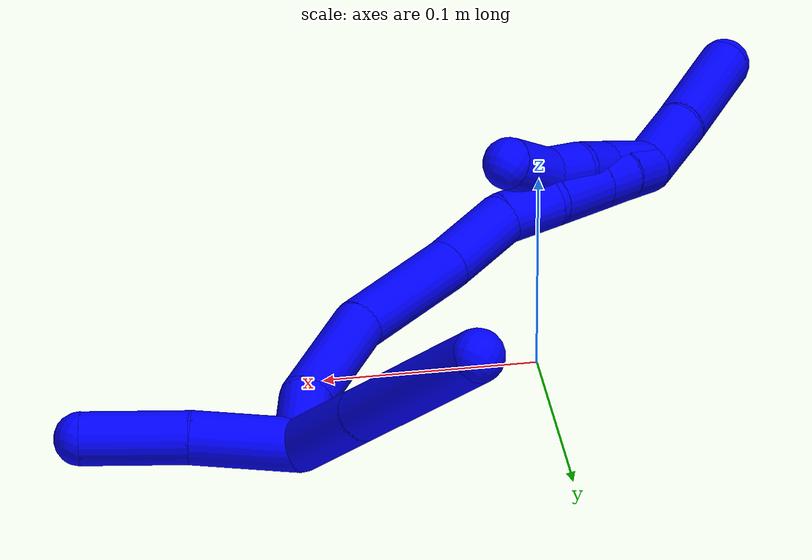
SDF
<sdf version="1.7">
 <world name="default">
  <model name="1">
   <static>0</static>
   <link name="1">
    <collision name="collision-cylinder-e_1_2_8">
     <pose>-0.020446 0.01611 0.005331 -1.25121 -0.878056 0.654109</pose>
     <geometry><cylinder><radius>0.0125</radius><length>0.053141</length></cylinder></geometry>
     <surface>
      <friction><ode><mu>1.16</mu><mu2>1.16</mu2><slip1>0</slip1><slip2>0</slip2></ode></friction>
      <contact><ode><kp>1e+06</kp><kd>1</kd><max_vel>0</max_vel><min_depth>0.001</min_depth></ode></contact>
     </surface>
    </collision>
    <visual name="visual-cylinder-e_1_2_8">
     <pose>-0.020446 0.01611 0.005331 -1.25121 -0.878056 0.654109</pose>
     <geometry><cylinder><radius>0.0125</radius><length>0.053141</length></cylinder></geometry>
     <material><ambient>0 0 1 1</ambient></material>
    </visual>
    <collision name="collision-cylinder-e_2_8_6">
     <pose>-0.078157 0.061573 0.020414 -1.25005 -0.878021 0.653334</pose>
     <geometry><cylinder><radius>0.0125</radius><length>0.096859</length></cylinder></geometry>
     <surface>
      <friction><ode><mu>1.16</mu><mu2>1.16</mu2><slip1>0</slip1><slip2>0</slip2></ode></friction>
      <contact><ode><kp>1e+06</kp><kd>1</kd><max_vel>0</max_vel><min_depth>0.001</min_depth></ode></contact>
     </surface>
    </collision>
    <visual name="visual-cylinder-e_2_8_6">
     <pose>-0.078157 0.061573 0.020414 -1.25005 -0.878021 0.653334</pose>
     <geometry><cylinder><radius>0.0125</radius><length>0.096859</length></cylinder></geometry>
     <material><ambient>0 0 1 1</ambient></material>
    </visual>
    <collision name="collision-cylinder-e_1_2_9">
     <pose>0.021272 0.008447 -0.010253 -2.45248 1.01256 -1.99277</pose>
     <geometry><cylinder><radius>0.0125</radius><length>0.050158</length></cylinder></geometry>
     <surface>
      <friction><ode><mu>1.16</mu><mu2>1.16</mu2><slip1>0</slip1><slip2>0</slip2></ode></friction>
      <contact><ode><kp>1e+06</kp><kd>1</kd><max_vel>0</max_vel><min_depth>0.001</min_depth></ode></contact>
     </surface>
    </collision>
    <visual name="visual-cylinder-e_1_2_9">
     <pose>0.021272 0.008447 -0.010253 -2.45248 1.01256 -1.99277</pose>
     <geometry><cylinder><radius>0.0125</radius><length>0.050158</length></cylinder></geometry>
     <material><ambient>0 0 1 1</ambient></material>
    </visual>
    <collision name="collision-cylinder-e_2_9_5">
     <pose>0.06371 0.023349 -0.031968 -2.62868 1.01471 -2.26004</pose>
     <geometry><cylinder><radius>0.0125</radius><length>0.049842</length></cylinder></geometry>
     <surface>
      <friction><ode><mu>1.16</mu><mu2>1.16</mu2><slip1>0</slip1><slip2>0</slip2></ode></friction>
      <contact><ode><kp>1e+06</kp><kd>1</kd><max_vel>0</max_vel><min_depth>0.001</min_depth></ode></contact>
     </surface>
    </collision>
    <visual name="visual-cylinder-e_2_9_5">
     <pose>0.06371 0.023349 -0.031968 -2.62868 1.01471 -2.26004</pose>
     <geometry><cylinder><radius>0.0125</radius><length>0.049842</length></cylinder></geometry>
     <material><ambient>0 0 1 1</ambient></material>
    </visual>
    <collision name="collision-cylinder-e_1_2_10">
     <pose>0.007816 -0.004168 0.013023 0.309744 0.519279 0.082896</pose>
     <geometry><cylinder><radius>0.0125</radius><length>0.031501</length></cylinder></geometry>
     <surface>
      <friction><ode><mu>1.16</mu><mu2>1.16</mu2><slip1>0</slip1><slip2>0</slip2></ode></friction>
      <contact><ode><kp>1e+06</kp><kd>1</kd><max_vel>0</max_vel><min_depth>0.001</min_depth></ode></contact>
     </surface>
    </collision>
    <visual name="visual-cylinder-e_1_2_10">
     <pose>0.007816 -0.004168 0.013023 0.309744 0.519279 0.082896</pose>
     <geometry><cylinder><radius>0.0125</radius><length>0.031501</length></cylinder></geometry>
     <material><ambient>0 0 1 1</ambient></material>
    </visual>
    <collision name="collision-cylinder-e_2_10_11">
     <pose>0.02217 -0.021716 0.052897 0.462296 0.214583 0.050687</pose>
     <geometry><cylinder><radius>0.0125</radius><length>0.061407</length></cylinder></geometry>
     <surface>
      <friction><ode><mu>1.16</mu><mu2>1.16</mu2><slip1>0</slip1><slip2>0</slip2></ode></friction>
      <contact><ode><kp>1e+06</kp><kd>1</kd><max_vel>0</max_vel><min_depth>0.001</min_depth></ode></contact>
     </surface>
    </collision>
    <visual name="visual-cylinder-e_2_10_11">
     <pose>0.02217 -0.021716 0.052897 0.462296 0.214583 0.050687</pose>
     <geometry><cylinder><radius>0.0125</radius><length>0.061407</length></cylinder></geometry>
     <material><ambient>0 0 1 1</ambient></material>
    </visual>
    <collision name="collision-cylinder-e_3_11_12">
     <pose>0.026158 -0.050798 0.108169 0.504756 -0.078372 -0.02022</pose>
     <geometry><cylinder><radius>0.0125</radius><length>0.065141</length></cylinder></geometry>
     <surface>
      <friction><ode><mu>1.16</mu><mu2>1.16</mu2><slip1>0</slip1><slip2>0</slip2></ode></friction>
      <contact><ode><kp>1e+06</kp><kd>1</kd><max_vel>0</max_vel><min_depth>0.001</min_depth></ode></contact>
     </surface>
    </collision>
    <visual name="visual-cylinder-e_3_11_12">
     <pose>0.026158 -0.050798 0.108169 0.504756 -0.078372 -0.02022</pose>
     <geometry><cylinder><radius>0.0125</radius><length>0.065141</length></cylinder></geometry>
     <material><ambient>0 0 1 1</ambient></material>
    </visual>
    <collision name="collision-cylinder-e_4_12_13">
     <pose>0.021408 -0.073612 0.155308 0.363045 -0.109426 -0.020104</pose>
     <geometry><cylinder><radius>0.0125</radius><length>0.040287</length></cylinder></geometry>
     <surface>
      <friction><ode><mu>1.16</mu><mu2>1.16</mu2><slip1>0</slip1><slip2>0</slip2></ode></friction>
      <contact><ode><kp>1e+06</kp><kd>1</kd><max_vel>0</max_vel><min_depth>0.001</min_depth></ode></contact>
     </surface>
    </collision>
    <visual name="visual-cylinder-e_4_12_13">
     <pose>0.021408 -0.073612 0.155308 0.363045 -0.109426 -0.020104</pose>
     <geometry><cylinder><radius>0.0125</radius><length>0.040287</length></cylinder></geometry>
     <material><ambient>0 0 1 1</ambient></material>
    </visual>
    <collision name="collision-cylinder-e_5_13_14">
     <pose>0.014009 -0.08719 0.185043 0.530867 -0.386514 -0.106301</pose>
     <geometry><cylinder><radius>0.0125</radius><length>0.027587</length></cylinder></geometry>
     <surface>
      <friction><ode><mu>1.16</mu><mu2>1.16</mu2><slip1>0</slip1><slip2>0</slip2></ode></friction>
      <contact><ode><kp>1e+06</kp><kd>1</kd><max_vel>0</max_vel><min_depth>0.001</min_depth></ode></contact>
     </surface>
    </collision>
    <visual name="visual-cylinder-e_5_13_14">
     <pose>0.014009 -0.08719 0.185043 0.530867 -0.386514 -0.106301</pose>
     <geometry><cylinder><radius>0.0125</radius><length>0.027587</length></cylinder></geometry>
     <material><ambient>0 0 1 1</ambient></material>
    </visual>
    <collision name="collision-cylinder-e_6_14_15">
     <pose>0.007068 -0.104254 0.208285 0.714118 -0.107261 -0.040047</pose>
     <geometry><cylinder><radius>0.0125</radius><length>0.032542</length></cylinder></geometry>
     <surface>
      <friction><ode><mu>1.16</mu><mu2>1.16</mu2><slip1>0</slip1><slip2>0</slip2></ode></friction>
      <contact><ode><kp>1e+06</kp><kd>1</kd><max_vel>0</max_vel><min_depth>0.001</min_depth></ode></contact>
     </surface>
    </collision>
    <visual name="visual-cylinder-e_6_14_15">
     <pose>0.007068 -0.104254 0.208285 0.714118 -0.107261 -0.040047</pose>
     <geometry><cylinder><radius>0.0125</radius><length>0.032542</length></cylinder></geometry>
     <material><ambient>0 0 1 1</ambient></material>
    </visual>
    <collision name="collision-cylinder-e_7_15_16">
     <pose>0.004301 -0.121381 0.228109 0.710076 -0.101948 -0.037825</pose>
     <geometry><cylinder><radius>0.0125</radius><length>0.020145</length></cylinder></geometry>
     <surface>
      <friction><ode><mu>1.16</mu><mu2>1.16</mu2><slip1>0</slip1><slip2>0</slip2></ode></friction>
      <contact><ode><kp>1e+06</kp><kd>1</kd><max_vel>0</max_vel><min_depth>0.001</min_depth></ode></contact>
     </surface>
    </collision>
    <visual name="visual-cylinder-e_7_15_16">
     <pose>0.004301 -0.121381 0.228109 0.710076 -0.101948 -0.037825</pose>
     <geometry><cylinder><radius>0.0125</radius><length>0.020145</length></cylinder></geometry>
     <material><ambient>0 0 1 1</ambient></material>
    </visual>
    <collision name="collision-cylinder-e_8_16_1">
     <pose>0.003143 -0.135507 0.243237 0.789586 -0.012435 -0.005181</pose>
     <geometry><cylinder><radius>0.0125</radius><length>0.021391</length></cylinder></geometry>
     <surface>
      <friction><ode><mu>1.16</mu><mu2>1.16</mu2><slip1>0</slip1><slip2>0</slip2></ode></friction>
      <contact><ode><kp>1e+06</kp><kd>1</kd><max_vel>0</max_vel><min_depth>0.001</min_depth></ode></contact>
     </surface>
    </collision>
    <visual name="visual-cylinder-e_8_16_1">
     <pose>0.003143 -0.135507 0.243237 0.789586 -0.012435 -0.005181</pose>
     <geometry><cylinder><radius>0.0125</radius><length>0.021391</length></cylinder></geometry>
     <material><ambient>0 0 1 1</ambient></material>
    </visual>
    <collision name="collision-cylinder-e_1_1_17">
     <pose>0.005377 -0.150442 0.267244 0.419143 0.130494 0.027793</pose>
     <geometry><cylinder><radius>0.0125</radius><length>0.036385</length></cylinder></geometry>
     <surface>
      <friction><ode><mu>1.16</mu><mu2>1.16</mu2><slip1>0</slip1><slip2>0</slip2></ode></friction>
      <contact><ode><kp>1e+06</kp><kd>1</kd><max_vel>0</max_vel><min_depth>0.001</min_depth></ode></contact>
     </surface>
    </collision>
    <visual name="visual-cylinder-e_1_1_17">
     <pose>0.005377 -0.150442 0.267244 0.419143 0.130494 0.027793</pose>
     <geometry><cylinder><radius>0.0125</radius><length>0.036385</length></cylinder></geometry>
     <material><ambient>0 0 1 1</ambient></material>
    </visual>
    <collision name="collision-cylinder-e_2_17_4">
     <pose>0.015225 -0.173413 0.310394 0.530036 0.237418 0.064718</pose>
     <geometry><cylinder><radius>0.0125</radius><length>0.063615</length></cylinder></geometry>
     <surface>
      <friction><ode><mu>1.16</mu><mu2>1.16</mu2><slip1>0</slip1><slip2>0</slip2></ode></friction>
      <contact><ode><kp>1e+06</kp><kd>1</kd><max_vel>0</max_vel><min_depth>0.001</min_depth></ode></contact>
     </surface>
    </collision>
    <visual name="visual-cylinder-e_2_17_4">
     <pose>0.015225 -0.173413 0.310394 0.530036 0.237418 0.064718</pose>
     <geometry><cylinder><radius>0.0125</radius><length>0.063615</length></cylinder></geometry>
     <material><ambient>0 0 1 1</ambient></material>
    </visual>
    <collision name="collision-cylinder-e_1_1_18">
     <pose>0.006571 -0.131406 0.24177 -2.22659 0.236862 -0.474262</pose>
     <geometry><cylinder><radius>0.0125</radius><length>0.030358</length></cylinder></geometry>
     <surface>
      <friction><ode><mu>1.16</mu><mu2>1.16</mu2><slip1>0</slip1><slip2>0</slip2></ode></friction>
      <contact><ode><kp>1e+06</kp><kd>1</kd><max_vel>0</max_vel><min_depth>0.001</min_depth></ode></contact>
     </surface>
    </collision>
    <visual name="visual-cylinder-e_1_1_18">
     <pose>0.006571 -0.131406 0.24177 -2.22659 0.236862 -0.474262</pose>
     <geometry><cylinder><radius>0.0125</radius><length>0.030358</length></cylinder></geometry>
     <material><ambient>0 0 1 1</ambient></material>
    </visual>
    <collision name="collision-cylinder-e_2_18_19">
     <pose>0.010624 -0.111182 0.226719 -2.18797 0.046916 -0.090778</pose>
     <geometry><cylinder><radius>0.0125</radius><length>0.020942</length></cylinder></geometry>
     <surface>
      <friction><ode><mu>1.16</mu><mu2>1.16</mu2><slip1>0</slip1><slip2>0</slip2></ode></friction>
      <contact><ode><kp>1e+06</kp><kd>1</kd><max_vel>0</max_vel><min_depth>0.001</min_depth></ode></contact>
     </surface>
    </collision>
    <visual name="visual-cylinder-e_2_18_19">
     <pose>0.010624 -0.111182 0.226719 -2.18797 0.046916 -0.090778</pose>
     <geometry><cylinder><radius>0.0125</radius><length>0.020942</length></cylinder></geometry>
     <material><ambient>0 0 1 1</ambient></material>
    </visual>
    <collision name="collision-cylinder-e_3_19_20">
     <pose>0.013402 -0.095493 0.213522 -2.35514 0.222286 -0.525622</pose>
     <geometry><cylinder><radius>0.0125</radius><length>0.02074</length></cylinder></geometry>
     <surface>
      <friction><ode><mu>1.16</mu><mu2>1.16</mu2><slip1>0</slip1><slip2>0</slip2></ode></friction>
      <contact><ode><kp>1e+06</kp><kd>1</kd><max_vel>0</max_vel><min_depth>0.001</min_depth></ode></contact>
     </surface>
    </collision>
    <visual name="visual-cylinder-e_3_19_20">
     <pose>0.013402 -0.095493 0.213522 -2.35514 0.222286 -0.525622</pose>
     <geometry><cylinder><radius>0.0125</radius><length>0.02074</length></cylinder></geometry>
     <material><ambient>0 0 1 1</ambient></material>
    </visual>
    <collision name="collision-cylinder-e_4_20_3">
     <pose>0.018127 -0.07597 0.200323 -2.02612 0.175377 -0.280021</pose>
     <geometry><cylinder><radius>0.0125</radius><length>0.02796</length></cylinder></geometry>
     <surface>
      <friction><ode><mu>1.16</mu><mu2>1.16</mu2><slip1>0</slip1><slip2>0</slip2></ode></friction>
      <contact><ode><kp>1e+06</kp><kd>1</kd><max_vel>0</max_vel><min_depth>0.001</min_depth></ode></contact>
     </surface>
    </collision>
    <visual name="visual-cylinder-e_4_20_3">
     <pose>0.018127 -0.07597 0.200323 -2.02612 0.175377 -0.280021</pose>
     <geometry><cylinder><radius>0.0125</radius><length>0.02796</length></cylinder></geometry>
     <material><ambient>0 0 1 1</ambient></material>
    </visual>
    <collision name="collision-sphere-3">
     <pose>0.020566 -0.063607 0.19427 0 -0 0</pose>
     <geometry><sphere><radius>0.0125</radius></sphere></geometry>
     <surface>
      <friction><ode><mu>1.16</mu><mu2>1.16</mu2><slip1>0</slip1><slip2>0</slip2></ode></friction>
      <contact><ode><kp>1e+06</kp><kd>1</kd><max_vel>0</max_vel><min_depth>0.001</min_depth></ode></contact>
     </surface>
    </collision>
    <visual name="visual-sphere-3">
     <pose>0.020566 -0.063607 0.19427 0 -0 0</pose>
     <geometry><sphere><radius>0.0125</radius></sphere></geometry>
     <material><ambient>0 0 1 1</ambient></material>
    </visual>
    <collision name="collision-sphere-20">
     <pose>0.015688 -0.088333 0.206377 0 -0 0</pose>
     <geometry><sphere><radius>0.0125</radius></sphere></geometry>
     <surface>
      <friction><ode><mu>1.16</mu><mu2>1.16</mu2><slip1>0</slip1><slip2>0</slip2></ode></friction>
      <contact><ode><kp>1e+06</kp><kd>1</kd><max_vel>0</max_vel><min_depth>0.001</min_depth></ode></contact>
     </surface>
    </collision>
    <visual name="visual-sphere-20">
     <pose>0.015688 -0.088333 0.206377 0 -0 0</pose>
     <geometry><sphere><radius>0.0125</radius></sphere></geometry>
     <material><ambient>0 0 1 1</ambient></material>
    </visual>
    <collision name="collision-sphere-19">
     <pose>0.011115 -0.102652 0.220666 0 -0 0</pose>
     <geometry><sphere><radius>0.0125</radius></sphere></geometry>
     <surface>
      <friction><ode><mu>1.16</mu><mu2>1.16</mu2><slip1>0</slip1><slip2>0</slip2></ode></friction>
      <contact><ode><kp>1e+06</kp><kd>1</kd><max_vel>0</max_vel><min_depth>0.001</min_depth></ode></contact>
     </surface>
    </collision>
    <visual name="visual-sphere-19">
     <pose>0.011115 -0.102652 0.220666 0 -0 0</pose>
     <geometry><sphere><radius>0.0125</radius></sphere></geometry>
     <material><ambient>0 0 1 1</ambient></material>
    </visual>
    <collision name="collision-sphere-10">
     <pose>0.015632 -0.008336 0.026047 0 -0 0</pose>
     <geometry><sphere><radius>0.0125</radius></sphere></geometry>
     <surface>
      <friction><ode><mu>1.16</mu><mu2>1.16</mu2><slip1>0</slip1><slip2>0</slip2></ode></friction>
      <contact><ode><kp>1e+06</kp><kd>1</kd><max_vel>0</max_vel><min_depth>0.001</min_depth></ode></contact>
     </surface>
    </collision>
    <visual name="visual-sphere-10">
     <pose>0.015632 -0.008336 0.026047 0 -0 0</pose>
     <geometry><sphere><radius>0.0125</radius></sphere></geometry>
     <material><ambient>0 0 1 1</ambient></material>
    </visual>
    <collision name="collision-sphere-5">
     <pose>0.084876 0.029804 -0.04343 0 -0 0</pose>
     <geometry><sphere><radius>0.0125</radius></sphere></geometry>
     <surface>
      <friction><ode><mu>1.16</mu><mu2>1.16</mu2><slip1>0</slip1><slip2>0</slip2></ode></friction>
      <contact><ode><kp>1e+06</kp><kd>1</kd><max_vel>0</max_vel><min_depth>0.001</min_depth></ode></contact>
     </surface>
    </collision>
    <visual name="visual-sphere-5">
     <pose>0.084876 0.029804 -0.04343 0 -0 0</pose>
     <geometry><sphere><radius>0.0125</radius></sphere></geometry>
     <material><ambient>0 0 1 1</ambient></material>
    </visual>
    <collision name="collision-sphere-6">
     <pose>-0.115423 0.090926 0.030166 0 -0 0</pose>
     <geometry><sphere><radius>0.0125</radius></sphere></geometry>
     <surface>
      <friction><ode><mu>1.16</mu><mu2>1.16</mu2><slip1>0</slip1><slip2>0</slip2></ode></friction>
      <contact><ode><kp>1e+06</kp><kd>1</kd><max_vel>0</max_vel><min_depth>0.001</min_depth></ode></contact>
     </surface>
    </collision>
    <visual name="visual-sphere-6">
     <pose>-0.115423 0.090926 0.030166 0 -0 0</pose>
     <geometry><sphere><radius>0.0125</radius></sphere></geometry>
     <material><ambient>0 0 1 1</ambient></material>
    </visual>
    <collision name="collision-sphere-9">
     <pose>0.042543 0.016893 -0.020505 0 -0 0</pose>
     <geometry><sphere><radius>0.0125</radius></sphere></geometry>
     <surface>
      <friction><ode><mu>1.16</mu><mu2>1.16</mu2><slip1>0</slip1><slip2>0</slip2></ode></friction>
      <contact><ode><kp>1e+06</kp><kd>1</kd><max_vel>0</max_vel><min_depth>0.001</min_depth></ode></contact>
     </surface>
    </collision>
    <visual name="visual-sphere-9">
     <pose>0.042543 0.016893 -0.020505 0 -0 0</pose>
     <geometry><sphere><radius>0.0125</radius></sphere></geometry>
     <material><ambient>0 0 1 1</ambient></material>
    </visual>
    <collision name="collision-sphere-2">
     <geometry><sphere><radius>0.0125</radius></sphere></geometry>
     <surface>
      <friction><ode><mu>1.16</mu><mu2>1.16</mu2><slip1>0</slip1><slip2>0</slip2></ode></friction>
      <contact><ode><kp>1e+06</kp><kd>1</kd><max_vel>0</max_vel><min_depth>0.001</min_depth></ode></contact>
     </surface>
    </collision>
    <visual name="visual-sphere-2">
     <geometry><sphere><radius>0.0125</radius></sphere></geometry>
     <material><ambient>0 0 1 1</ambient></material>
    </visual>
    <collision name="collision-sphere-8">
     <pose>-0.040892 0.03222 0.010662 0 -0 0</pose>
     <geometry><sphere><radius>0.0125</radius></sphere></geometry>
     <surface>
      <friction><ode><mu>1.16</mu><mu2>1.16</mu2><slip1>0</slip1><slip2>0</slip2></ode></friction>
      <contact><ode><kp>1e+06</kp><kd>1</kd><max_vel>0</max_vel><min_depth>0.001</min_depth></ode></contact>
     </surface>
    </collision>
    <visual name="visual-sphere-8">
     <pose>-0.040892 0.03222 0.010662 0 -0 0</pose>
     <geometry><sphere><radius>0.0125</radius></sphere></geometry>
     <material><ambient>0 0 1 1</ambient></material>
    </visual>
    <collision name="collision-sphere-11">
     <pose>0.028708 -0.035096 0.079747 0 -0 0</pose>
     <geometry><sphere><radius>0.0125</radius></sphere></geometry>
     <surface>
      <friction><ode><mu>1.16</mu><mu2>1.16</mu2><slip1>0</slip1><slip2>0</slip2></ode></friction>
      <contact><ode><kp>1e+06</kp><kd>1</kd><max_vel>0</max_vel><min_depth>0.001</min_depth></ode></contact>
     </surface>
    </collision>
    <visual name="visual-sphere-11">
     <pose>0.028708 -0.035096 0.079747 0 -0 0</pose>
     <geometry><sphere><radius>0.0125</radius></sphere></geometry>
     <material><ambient>0 0 1 1</ambient></material>
    </visual>
    <collision name="collision-sphere-12">
     <pose>0.023608 -0.066501 0.13659 0 -0 0</pose>
     <geometry><sphere><radius>0.0125</radius></sphere></geometry>
     <surface>
      <friction><ode><mu>1.16</mu><mu2>1.16</mu2><slip1>0</slip1><slip2>0</slip2></ode></friction>
      <contact><ode><kp>1e+06</kp><kd>1</kd><max_vel>0</max_vel><min_depth>0.001</min_depth></ode></contact>
     </surface>
    </collision>
    <visual name="visual-sphere-12">
     <pose>0.023608 -0.066501 0.13659 0 -0 0</pose>
     <geometry><sphere><radius>0.0125</radius></sphere></geometry>
     <material><ambient>0 0 1 1</ambient></material>
    </visual>
    <collision name="collision-sphere-13">
     <pose>0.019209 -0.080722 0.174026 0 -0 0</pose>
     <geometry><sphere><radius>0.0125</radius></sphere></geometry>
     <surface>
      <friction><ode><mu>1.16</mu><mu2>1.16</mu2><slip1>0</slip1><slip2>0</slip2></ode></friction>
      <contact><ode><kp>1e+06</kp><kd>1</kd><max_vel>0</max_vel><min_depth>0.001</min_depth></ode></contact>
     </surface>
    </collision>
    <visual name="visual-sphere-13">
     <pose>0.019209 -0.080722 0.174026 0 -0 0</pose>
     <geometry><sphere><radius>0.0125</radius></sphere></geometry>
     <material><ambient>0 0 1 1</ambient></material>
    </visual>
    <collision name="collision-sphere-14">
     <pose>0.008809 -0.093659 0.196061 0 -0 0</pose>
     <geometry><sphere><radius>0.0125</radius></sphere></geometry>
     <surface>
      <friction><ode><mu>1.16</mu><mu2>1.16</mu2><slip1>0</slip1><slip2>0</slip2></ode></friction>
      <contact><ode><kp>1e+06</kp><kd>1</kd><max_vel>0</max_vel><min_depth>0.001</min_depth></ode></contact>
     </surface>
    </collision>
    <visual name="visual-sphere-14">
     <pose>0.008809 -0.093659 0.196061 0 -0 0</pose>
     <geometry><sphere><radius>0.0125</radius></sphere></geometry>
     <material><ambient>0 0 1 1</ambient></material>
    </visual>
    <collision name="collision-sphere-15">
     <pose>0.005326 -0.114849 0.22051 0 -0 0</pose>
     <geometry><sphere><radius>0.0125</radius></sphere></geometry>
     <surface>
      <friction><ode><mu>1.16</mu><mu2>1.16</mu2><slip1>0</slip1><slip2>0</slip2></ode></friction>
      <contact><ode><kp>1e+06</kp><kd>1</kd><max_vel>0</max_vel><min_depth>0.001</min_depth></ode></contact>
     </surface>
    </collision>
    <visual name="visual-sphere-15">
     <pose>0.005326 -0.114849 0.22051 0 -0 0</pose>
     <geometry><sphere><radius>0.0125</radius></sphere></geometry>
     <material><ambient>0 0 1 1</ambient></material>
    </visual>
    <collision name="collision-sphere-16">
     <pose>0.003276 -0.127913 0.235707 0 -0 0</pose>
     <geometry><sphere><radius>0.0125</radius></sphere></geometry>
     <surface>
      <friction><ode><mu>1.16</mu><mu2>1.16</mu2><slip1>0</slip1><slip2>0</slip2></ode></friction>
      <contact><ode><kp>1e+06</kp><kd>1</kd><max_vel>0</max_vel><min_depth>0.001</min_depth></ode></contact>
     </surface>
    </collision>
    <visual name="visual-sphere-16">
     <pose>0.003276 -0.127913 0.235707 0 -0 0</pose>
     <geometry><sphere><radius>0.0125</radius></sphere></geometry>
     <material><ambient>0 0 1 1</ambient></material>
    </visual>
    <collision name="collision-sphere-1">
     <pose>0.00301 -0.143101 0.250768 0 -0 0</pose>
     <geometry><sphere><radius>0.0125</radius></sphere></geometry>
     <surface>
      <friction><ode><mu>1.16</mu><mu2>1.16</mu2><slip1>0</slip1><slip2>0</slip2></ode></friction>
      <contact><ode><kp>1e+06</kp><kd>1</kd><max_vel>0</max_vel><min_depth>0.001</min_depth></ode></contact>
     </surface>
    </collision>
    <visual name="visual-sphere-1">
     <pose>0.00301 -0.143101 0.250768 0 -0 0</pose>
     <geometry><sphere><radius>0.0125</radius></sphere></geometry>
     <material><ambient>0 0 1 1</ambient></material>
    </visual>
    <collision name="collision-sphere-18">
     <pose>0.010133 -0.119712 0.232773 0 -0 0</pose>
     <geometry><sphere><radius>0.0125</radius></sphere></geometry>
     <surface>
      <friction><ode><mu>1.16</mu><mu2>1.16</mu2><slip1>0</slip1><slip2>0</slip2></ode></friction>
      <contact><ode><kp>1e+06</kp><kd>1</kd><max_vel>0</max_vel><min_depth>0.001</min_depth></ode></contact>
     </surface>
    </collision>
    <visual name="visual-sphere-18">
     <pose>0.010133 -0.119712 0.232773 0 -0 0</pose>
     <geometry><sphere><radius>0.0125</radius></sphere></geometry>
     <material><ambient>0 0 1 1</ambient></material>
    </visual>
    <collision name="collision-sphere-17">
     <pose>0.007744 -0.157783 0.283721 0 -0 0</pose>
     <geometry><sphere><radius>0.0125</radius></sphere></geometry>
     <surface>
      <friction><ode><mu>1.16</mu><mu2>1.16</mu2><slip1>0</slip1><slip2>0</slip2></ode></friction>
      <contact><ode><kp>1e+06</kp><kd>1</kd><max_vel>0</max_vel><min_depth>0.001</min_depth></ode></contact>
     </surface>
    </collision>
    <visual name="visual-sphere-17">
     <pose>0.007744 -0.157783 0.283721 0 -0 0</pose>
     <geometry><sphere><radius>0.0125</radius></sphere></geometry>
     <material><ambient>0 0 1 1</ambient></material>
    </visual>
    <collision name="collision-sphere-4">
     <pose>0.022706 -0.189042 0.337067 0 -0 0</pose>
     <geometry><sphere><radius>0.0125</radius></sphere></geometry>
     <surface>
      <friction><ode><mu>1.16</mu><mu2>1.16</mu2><slip1>0</slip1><slip2>0</slip2></ode></friction>
      <contact><ode><kp>1e+06</kp><kd>1</kd><max_vel>0</max_vel><min_depth>0.001</min_depth></ode></contact>
     </surface>
    </collision>
    <visual name="visual-sphere-4">
     <pose>0.022706 -0.189042 0.337067 0 -0 0</pose>
     <geometry><sphere><radius>0.0125</radius></sphere></geometry>
     <material><ambient>0 0 1 1</ambient></material>
    </visual>
    <inertial>
     <pose>0.003868 -0.049869 0.12051 0 -0 0</pose>
     <mass>0.75</mass>
     <inertia><ixx>0.00017</ixx><ixy>0</ixy><ixz>0</ixz><iyy>0.000192</iyy><iyz>0</iyz><izz>3.5e-05</izz></inertia>
    </inertial>
   </link>
   <pose>0.120277 0.06822 0.011233 1.04767 0.051183 -0.762656</pose>
  </model>
 </world>
</sdf>
